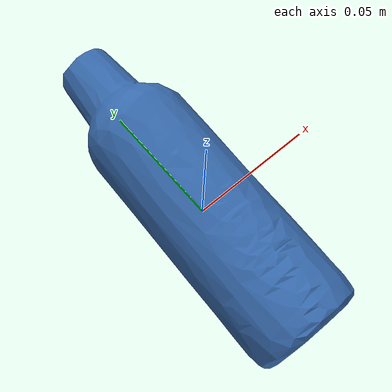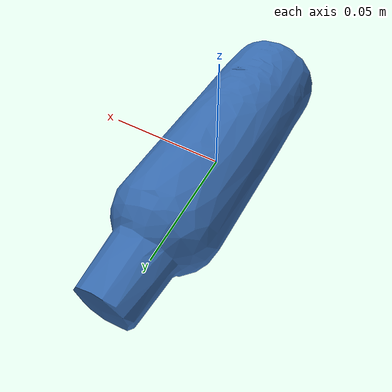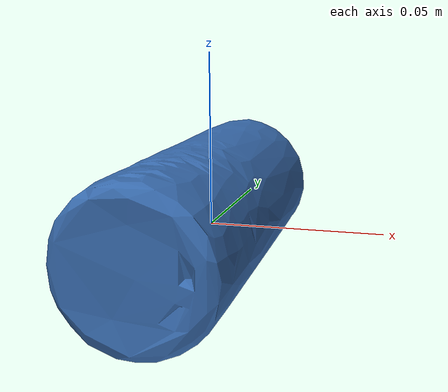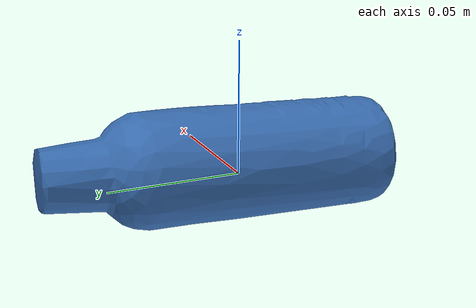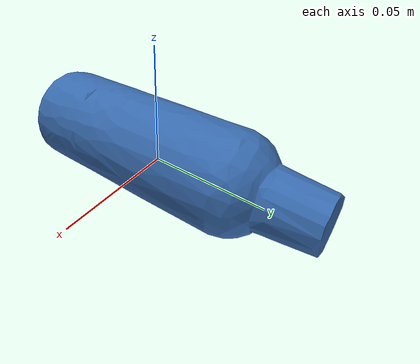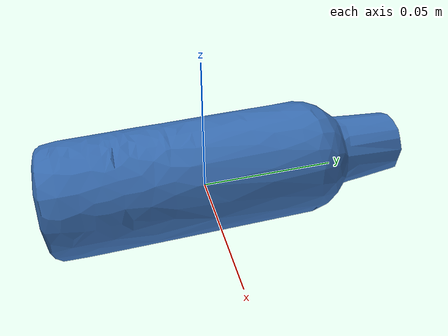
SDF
<sdf version="1.6">
  <model name="bottle2_4">
    <link name="link">
      <pose frame="">-0 0 0.005 0 -0 0</pose>
      <inertial>
        <mass>0.5</mass>
        <inertia>
          <ixx>0.0007996786906666666</ixx>
          <ixy>0</ixy>
          <ixz>0</ixz>
          <iyy>0.0007940314833333333</iyy>
          <iyz>0</iyz>
          <izz>0.00016310279266666664</izz>
        </inertia>
        <pose frame="">-6.499999999999769e-05 0.007947999999999995 -0.00018999999999999863 1.57 0 3.14</pose>
      </inertial>
      <self_collide>0</self_collide>
      <kinematic>0</kinematic>
      <gravity>1</gravity>
      <visual name="visual">
        <geometry>
          <mesh>
            <uri>/home/zisu/simulator/siemens_challenge/sim_world/toolbox/bottle2_4.dae</uri>
          </mesh>
        </geometry>
        <pose frame="">0 0 0 0 -0 0</pose>
        <transparency>0</transparency>
        <cast_shadows>0</cast_shadows>
      </visual>
      <collision name="collision">
        <laser_retro>0</laser_retro>
        <max_contacts>10</max_contacts>
        <pose frame="">-6.499999999999769e-05 0.007947999999999995 -0.00018999999999999863 1.57 0 3.14</pose>
        <geometry>
          <box>
            <size>0.043468 0.045 0.131024</size>
          </box>
        </geometry>
        <surface>
          <friction>
            <ode>
              <mu>1</mu>
              <mu2>1</mu2>
              <fdir1>0 0 0</fdir1>
              <slip1>0</slip1>
              <slip2>0</slip2>
            </ode>
            <torsional>
              <coefficient>1</coefficient>
              <patch_radius>0</patch_radius>
              <surface_radius>0.05</surface_radius>
              <use_patch_radius>0</use_patch_radius>
              <ode>
                <slip>0</slip>
              </ode>
            </torsional>
          </friction>
          <bounce>
            <restitution_coefficient>0</restitution_coefficient>
            <threshold>1e+06</threshold>
          </bounce>
          <contact>
            <collide_without_contact>0</collide_without_contact>
            <collide_without_contact_bitmask>1</collide_without_contact_bitmask>
            <collide_bitmask>1</collide_bitmask>
            <ode>
              <soft_cfm>0</soft_cfm>
              <soft_erp>0.2</soft_erp>
              <kp>100000</kp>
              <kd>1</kd>
              <max_vel>1</max_vel>
              <min_depth>0.001</min_depth>
            </ode>
            <bullet>
              <split_impulse>1</split_impulse>
              <split_impulse_penetration_threshold>-0.01</split_impulse_penetration_threshold>
              <soft_cfm>0</soft_cfm>
              <soft_erp>0.2</soft_erp>
              <kp>100000</kp>
              <kd>1</kd>
            </bullet>
          </contact>
        </surface>
      </collision>
    </link>
    <static>0</static>
    <allow_auto_disable>1</allow_auto_disable>
  </model>
</sdf>
